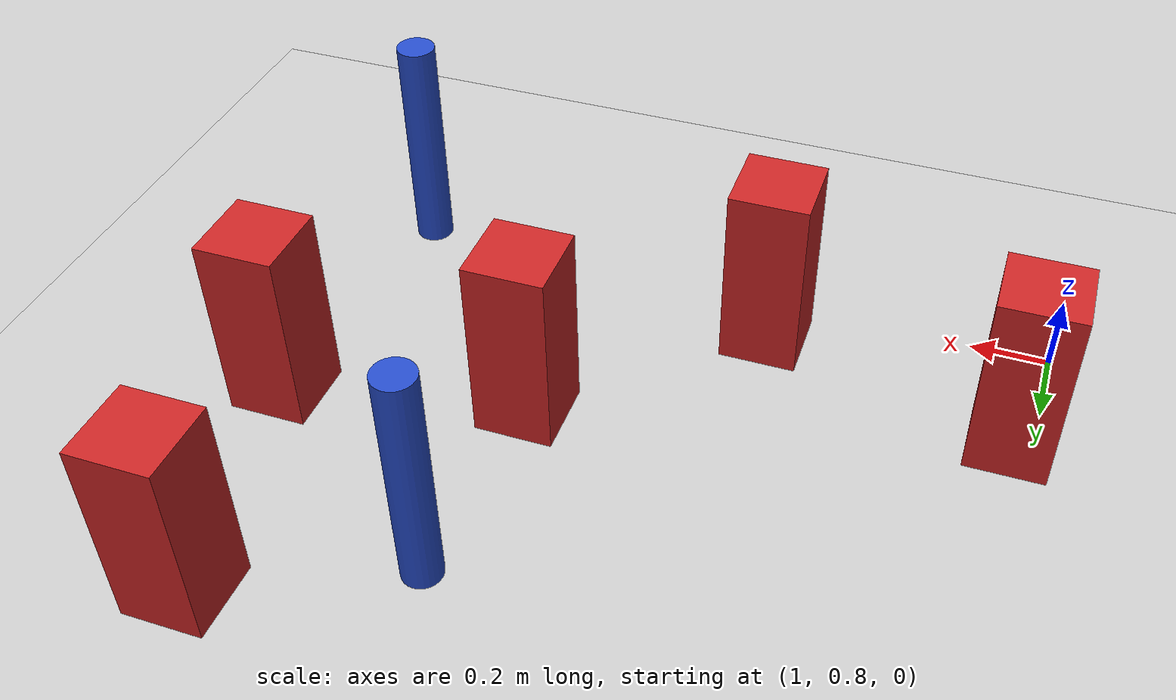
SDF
<sdf version="1.6">
 <world name="default">
  <model name="ground_plane">
   <static>1</static>
   <link name="link">
    <collision name="collision">
     <geometry><plane><normal>0 0 1</normal><size>100 100</size></plane></geometry>
     <surface><friction><ode><mu>100</mu><mu2>50</mu2></ode></friction></surface>
    </collision>
    <visual name="visual">
     <cast_shadows>0</cast_shadows>
     <geometry><plane><normal>0 0 1</normal><size>100 100</size></plane></geometry>
     <material>
      <ambient>1.0 1.0 1.0 1.0</ambient>
      <diffuse>0.8 0.8 0.8 1.0</diffuse>
      <specular>0.01 0.01 0.01 1.000000</specular>
     </material>
    </visual>
   </link>
  </model>
  <model name="square_post_obstacle10">
   <static>true</static>
   <pose>1.06012387388 1.13206869176 8.22691968438e-08 7.2212513382e-06 -7.54495500217e-07 2.29674213826e-05</pose>
   <link name="link">
    <pose>0 0 0.25 0 -0 0</pose>
    <inertial>
     <mass>100</mass>
     <inertia>
      <ixx>0.166667</ixx>
      <ixy>0</ixy>
      <ixz>0</ixz>
      <iyy>0.166667</iyy>
      <iyz>0</iyz>
      <izz>0.166667</izz>
     </inertia>
    </inertial>
    <collision name="collision"><geometry><box><size>.2 .2 .5</size></box></geometry></collision>
    <visual name="visual">
     <geometry><box><size>.2 .2 .5</size></box></geometry>
     <material>
      <script><name>Gazebo/Red</name><uri>file://media/materials/scripts/gazebo.material</uri></script>
     </material>
    </visual>
   </link>
  </model>
  <model name="square_post_obstacle54">
   <static>true</static>
   <pose>1.7156146805 0.942488484448 8.22691968438e-08 7.2212513382e-06 -7.54495500217e-07 2.29674213826e-05</pose>
   <link name="link">
    <pose>0 0 0.25 0 -0 0</pose>
    <inertial>
     <mass>100</mass>
     <inertia>
      <ixx>0.166667</ixx>
      <ixy>0</ixy>
      <ixz>0</ixz>
      <iyy>0.166667</iyy>
      <iyz>0</iyz>
      <izz>0.166667</izz>
     </inertia>
    </inertial>
    <collision name="collision"><geometry><box><size>.2 .2 .5</size></box></geometry></collision>
    <visual name="visual">
     <geometry><box><size>.2 .2 .5</size></box></geometry>
     <material>
      <script><name>Gazebo/Red</name><uri>file://media/materials/scripts/gazebo.material</uri></script>
     </material>
    </visual>
   </link>
  </model>
  <model name="square_post_obstacle92">
   <static>true</static>
   <pose>2.70662991358 2.15097162154 8.22691968438e-08 7.2212513382e-06 -7.54495500217e-07 2.29674213826e-05</pose>
   <link name="link">
    <pose>0 0 0.25 0 -0 0</pose>
    <inertial>
     <mass>100</mass>
     <inertia>
      <ixx>0.166667</ixx>
      <ixy>0</ixy>
      <ixz>0</ixz>
      <iyy>0.166667</iyy>
      <iyz>0</iyz>
      <izz>0.166667</izz>
     </inertia>
    </inertial>
    <collision name="collision"><geometry><box><size>.2 .2 .5</size></box></geometry></collision>
    <visual name="visual">
     <geometry><box><size>.2 .2 .5</size></box></geometry>
     <material>
      <script><name>Gazebo/Red</name><uri>file://media/materials/scripts/gazebo.material</uri></script>
     </material>
    </visual>
   </link>
  </model>
  <model name="square_post_obstacle107">
   <static>true</static>
   <pose>2.81394870366 1.51973048059 8.22691968438e-08 7.2212513382e-06 -7.54495500217e-07 2.29674213826e-05</pose>
   <link name="link">
    <pose>0 0 0.25 0 -0 0</pose>
    <inertial>
     <mass>100</mass>
     <inertia>
      <ixx>0.166667</ixx>
      <ixy>0</ixy>
      <ixz>0</ixz>
      <iyy>0.166667</iyy>
      <iyz>0</iyz>
      <izz>0.166667</izz>
     </inertia>
    </inertial>
    <collision name="collision"><geometry><box><size>.2 .2 .5</size></box></geometry></collision>
    <visual name="visual">
     <geometry><box><size>.2 .2 .5</size></box></geometry>
     <material>
      <script><name>Gazebo/Red</name><uri>file://media/materials/scripts/gazebo.material</uri></script>
     </material>
    </visual>
   </link>
  </model>
  <model name="square_post_obstacle136">
   <static>true</static>
   <pose>2.20929106963 1.39264731162 8.22691968438e-08 7.2212513382e-06 -7.54495500217e-07 2.29674213826e-05</pose>
   <link name="link">
    <pose>0 0 0.25 0 -0 0</pose>
    <inertial>
     <mass>100</mass>
     <inertia>
      <ixx>0.166667</ixx>
      <ixy>0</ixy>
      <ixz>0</ixz>
      <iyy>0.166667</iyy>
      <iyz>0</iyz>
      <izz>0.166667</izz>
     </inertia>
    </inertial>
    <collision name="collision"><geometry><box><size>.2 .2 .5</size></box></geometry></collision>
    <visual name="visual">
     <geometry><box><size>.2 .2 .5</size></box></geometry>
     <material>
      <script><name>Gazebo/Red</name><uri>file://media/materials/scripts/gazebo.material</uri></script>
     </material>
    </visual>
   </link>
  </model>
  <model name="pole_obstacle171">
   <static>true</static>
   <pose>2.73664677738 0.795445623623 2.88873142074e-08 -9.90536689285e-09 4.60219949002e-07 -1.20965994953e-07</pose>
   <link name="link">
    <pose>0 0 0.3 0 -0 0</pose>
    <inertial>
     <mass>1</mass>
     <inertia><ixx>0.145833</ixx><ixy>0</ixy><ixz>0</ixz><iyy>0.145833</iyy><iyz>0</iyz><izz>0.125</izz></inertia>
    </inertial>
    <collision name="collision">
     <geometry><cylinder><radius>0.05</radius><length>.6</length></cylinder></geometry>
    </collision>
    <visual name="visual">
     <geometry><cylinder><radius>0.05</radius><length>.6</length></cylinder></geometry>
     <material>
      <script><name>Gazebo/Blue</name><uri>file://media/materials/scripts/gazebo.material</uri></script>
     </material>
    </visual>
   </link>
  </model>
  <model name="pole_obstacle173">
   <static>true</static>
   <pose>2.24063462737 1.93702972418 2.88873142074e-08 -9.90536689395e-09 4.60219949e-07 -1.20965994953e-07</pose>
   <link name="link">
    <pose>0 0 0.3 0 -0 0</pose>
    <inertial>
     <mass>1</mass>
     <inertia><ixx>0.145833</ixx><ixy>0</ixy><ixz>0</ixz><iyy>0.145833</iyy><iyz>0</iyz><izz>0.125</izz></inertia>
    </inertial>
    <collision name="collision">
     <geometry><cylinder><radius>0.05</radius><length>.6</length></cylinder></geometry>
    </collision>
    <visual name="visual">
     <geometry><cylinder><radius>0.05</radius><length>.6</length></cylinder></geometry>
     <material>
      <script><name>Gazebo/Blue</name><uri>file://media/materials/scripts/gazebo.material</uri></script>
     </material>
    </visual>
   </link>
  </model>
 </world>
</sdf>
